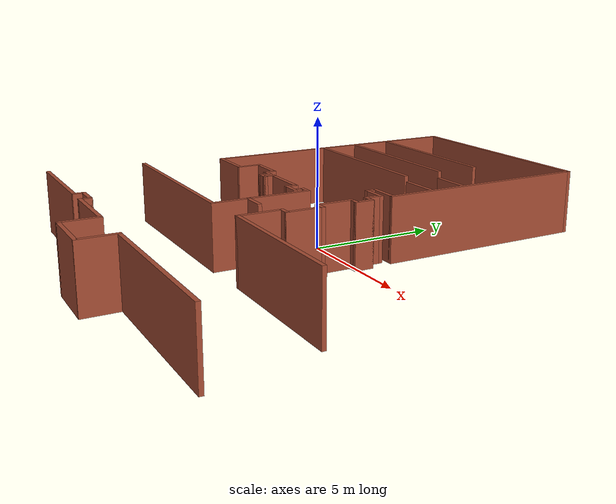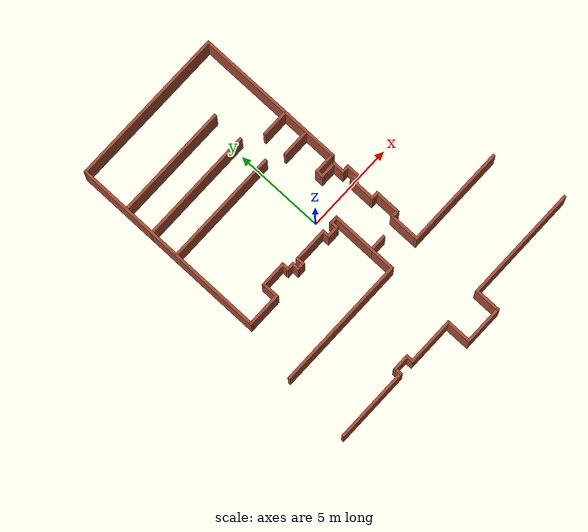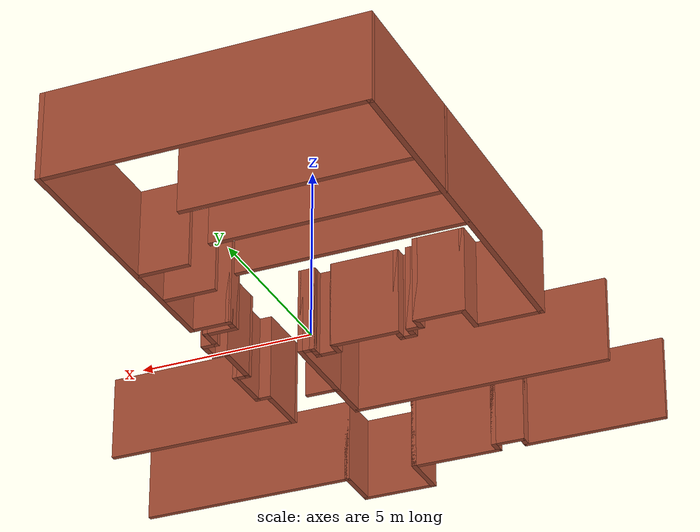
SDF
<?xml version='1.0'?>
<sdf version='1.7'>
  <model name='f1l3.building'>
    <pose>1.00904 0.074098 0 0 -0 0</pose>
    <link name='Wall_10'>
      <collision name='Wall_10_Collision'>
        <geometry>
          <box>
            <size>0.5 0.15 2.5</size>
          </box>
        </geometry>
        <pose>0 0 1.25 0 -0 0</pose>
      </collision>
      <visual name='Wall_10_Visual'>
        <pose>0 0 1.25 0 -0 0</pose>
        <geometry>
          <box>
            <size>0.5 0.15 2.5</size>
          </box>
        </geometry>
        <material>
          <script>
            <uri>file://media/materials/scripts/gazebo.material</uri>
            <name>Gazebo/Bricks</name>
          </script>
          <ambient>1 1 1 1</ambient>
        </material>
        <meta>
          <layer>0</layer>
        </meta>
      </visual>
      <pose>1.72436 -0.153641 0 0 -0 0</pose>
    </link>
    <link name='Wall_101'>
      <collision name='Wall_101_Collision'>
        <geometry>
          <box>
            <size>6.5 0.15 2.5</size>
          </box>
        </geometry>
        <pose>0 0 1.25 0 -0 0</pose>
      </collision>
      <visual name='Wall_101_Visual'>
        <pose>0 0 1.25 0 -0 0</pose>
        <geometry>
          <box>
            <size>6.5 0.15 2.5</size>
          </box>
        </geometry>
        <material>
          <script>
            <uri>file://media/materials/scripts/gazebo.material</uri>
            <name>Gazebo/Bricks</name>
          </script>
          <ambient>1 1 1 1</ambient>
        </material>
        <meta>
          <layer>0</layer>
        </meta>
      </visual>
      <pose>-3.87648 5.27222 0 0 -0 0</pose>
    </link>
    <link name='Wall_103'>
      <collision name='Wall_103_Collision'>
        <geometry>
          <box>
            <size>6.5 0.15 2.5</size>
          </box>
        </geometry>
        <pose>0 0 1.25 0 -0 0</pose>
      </collision>
      <visual name='Wall_103_Visual'>
        <pose>0 0 1.25 0 -0 0</pose>
        <geometry>
          <box>
            <size>6.5 0.15 2.5</size>
          </box>
        </geometry>
        <material>
          <script>
            <uri>file://media/materials/scripts/gazebo.material</uri>
            <name>Gazebo/Bricks</name>
          </script>
          <ambient>1 1 1 1</ambient>
        </material>
        <meta>
          <layer>0</layer>
        </meta>
      </visual>
      <pose>-3.82297 3.63505 0 0 -0 0</pose>
    </link>
    <link name='Wall_105'>
      <collision name='Wall_105_Collision'>
        <geometry>
          <box>
            <size>1.5 0.15 2.5</size>
          </box>
        </geometry>
        <pose>0 0 1.25 0 -0 0</pose>
      </collision>
      <visual name='Wall_105_Visual'>
        <pose>0 0 1.25 0 -0 0</pose>
        <geometry>
          <box>
            <size>1.5 0.15 2.5</size>
          </box>
        </geometry>
        <material>
          <script>
            <uri>file://media/materials/scripts/gazebo.material</uri>
            <name>Gazebo/Bricks</name>
          </script>
          <ambient>1 1 1 1</ambient>
        </material>
        <meta>
          <layer>0</layer>
        </meta>
      </visual>
      <pose>1.02827 4.55529 0 0 -0 0</pose>
    </link>
    <link name='Wall_107'>
      <collision name='Wall_107_Collision'>
        <geometry>
          <box>
            <size>1.5 0.15 2.5</size>
          </box>
        </geometry>
        <pose>0 0 1.25 0 -0 0</pose>
      </collision>
      <visual name='Wall_107_Visual'>
        <pose>0 0 1.25 0 -0 0</pose>
        <geometry>
          <box>
            <size>1.5 0.15 2.5</size>
          </box>
        </geometry>
        <material>
          <script>
            <uri>file://media/materials/scripts/gazebo.material</uri>
            <name>Gazebo/Bricks</name>
          </script>
          <ambient>1 1 1 1</ambient>
        </material>
        <meta>
          <layer>0</layer>
        </meta>
      </visual>
      <pose>0.974768 3.13212 0 0 -0 0</pose>
    </link>
    <link name='Wall_11'>
      <collision name='Wall_11_Collision'>
        <geometry>
          <box>
            <size>0.75 0.15 2.5</size>
          </box>
        </geometry>
        <pose>0 0 1.25 0 -0 0</pose>
      </collision>
      <visual name='Wall_11_Visual'>
        <pose>0 0 1.25 0 -0 0</pose>
        <geometry>
          <box>
            <size>0.75 0.15 2.5</size>
          </box>
        </geometry>
        <material>
          <script>
            <uri>file://media/materials/scripts/gazebo.material</uri>
            <name>Gazebo/Bricks</name>
          </script>
          <ambient>1 1 1 1</ambient>
        </material>
        <meta>
          <layer>0</layer>
        </meta>
      </visual>
      <pose>1.89936 0.146359 0 0 -0 1.5708</pose>
    </link>
    <link name='Wall_12'>
      <collision name='Wall_12_Collision'>
        <geometry>
          <box>
            <size>0.5 0.15 2.5</size>
          </box>
        </geometry>
        <pose>0 0 1.25 0 -0 0</pose>
      </collision>
      <visual name='Wall_12_Visual'>
        <pose>0 0 1.25 0 -0 0</pose>
        <geometry>
          <box>
            <size>0.5 0.15 2.5</size>
          </box>
        </geometry>
        <material>
          <script>
            <uri>file://media/materials/scripts/gazebo.material</uri>
            <name>Gazebo/Bricks</name>
          </script>
          <ambient>1 1 1 1</ambient>
        </material>
        <meta>
          <layer>0</layer>
        </meta>
      </visual>
      <pose>1.72436 0.446359 0 0 -0 3.14159</pose>
    </link>
    <link name='Wall_13'>
      <collision name='Wall_13_Collision'>
        <geometry>
          <box>
            <size>0.75 0.15 2.5</size>
          </box>
        </geometry>
        <pose>0 0 1.25 0 -0 0</pose>
      </collision>
      <visual name='Wall_13_Visual'>
        <pose>0 0 1.25 0 -0 0</pose>
        <geometry>
          <box>
            <size>0.75 0.15 2.5</size>
          </box>
        </geometry>
        <material>
          <script>
            <uri>file://media/materials/scripts/gazebo.material</uri>
            <name>Gazebo/Bricks</name>
          </script>
          <ambient>1 1 1 1</ambient>
        </material>
        <meta>
          <layer>0</layer>
        </meta>
      </visual>
      <pose>1.54936 0.746359 0 0 -0 1.5708</pose>
    </link>
    <link name='Wall_14'>
      <collision name='Wall_14_Collision'>
        <geometry>
          <box>
            <size>1 0.15 2.5</size>
          </box>
        </geometry>
        <pose>0 0 1.25 0 -0 0</pose>
      </collision>
      <visual name='Wall_14_Visual'>
        <pose>0 0 1.25 0 -0 0</pose>
        <geometry>
          <box>
            <size>1 0.15 2.5</size>
          </box>
        </geometry>
        <material>
          <script>
            <uri>file://media/materials/scripts/gazebo.material</uri>
            <name>Gazebo/Bricks</name>
          </script>
          <ambient>1 1 1 1</ambient>
        </material>
        <meta>
          <layer>0</layer>
        </meta>
      </visual>
      <pose>1.12436 1.04636 0 0 -0 3.14159</pose>
    </link>
    <link name='Wall_15'>
      <collision name='Wall_15_Collision'>
        <geometry>
          <box>
            <size>0.5 0.15 2.5</size>
          </box>
        </geometry>
        <pose>0 0 1.25 0 -0 0</pose>
      </collision>
      <visual name='Wall_15_Visual'>
        <pose>0 0 1.25 0 -0 0</pose>
        <geometry>
          <box>
            <size>0.5 0.15 2.5</size>
          </box>
        </geometry>
        <material>
          <script>
            <uri>file://media/materials/scripts/gazebo.material</uri>
            <name>Gazebo/Bricks</name>
          </script>
          <ambient>1 1 1 1</ambient>
        </material>
        <meta>
          <layer>0</layer>
        </meta>
      </visual>
      <pose>0.699359 1.22136 0 0 -0 1.5708</pose>
    </link>
    <link name='Wall_16'>
      <collision name='Wall_16_Collision'>
        <geometry>
          <box>
            <size>1.25 0.15 2.5</size>
          </box>
        </geometry>
        <pose>0 0 1.25 0 -0 0</pose>
      </collision>
      <visual name='Wall_16_Visual'>
        <pose>0 0 1.25 0 -0 0</pose>
        <geometry>
          <box>
            <size>1.25 0.15 2.5</size>
          </box>
        </geometry>
        <material>
          <script>
            <uri>file://media/materials/scripts/gazebo.material</uri>
            <name>Gazebo/Bricks</name>
          </script>
          <ambient>1 1 1 1</ambient>
        </material>
        <meta>
          <layer>0</layer>
        </meta>
      </visual>
      <pose>1.24936 1.39636 0 0 -0 0</pose>
    </link>
    <link name='Wall_19'>
      <collision name='Wall_19_Collision'>
        <geometry>
          <box>
            <size>8.5 0.15 2.5</size>
          </box>
        </geometry>
        <pose>0 0 1.25 0 -0 0</pose>
      </collision>
      <visual name='Wall_19_Visual'>
        <pose>0 0 1.25 0 -0 0</pose>
        <geometry>
          <box>
            <size>8.5 0.15 2.5</size>
          </box>
        </geometry>
        <material>
          <script>
            <uri>file://media/materials/scripts/gazebo.material</uri>
            <name>Gazebo/Bricks</name>
          </script>
          <ambient>1 1 1 1</ambient>
        </material>
        <meta>
          <layer>0</layer>
        </meta>
      </visual>
      <pose>1.79936 5.57136 0 0 -0 1.5708</pose>
    </link>
    <link name='Wall_20'>
      <collision name='Wall_20_Collision'>
        <geometry>
          <box>
            <size>9 0.15 2.5</size>
          </box>
        </geometry>
        <pose>0 0 1.25 0 -0 0</pose>
      </collision>
      <visual name='Wall_20_Visual'>
        <pose>0 0 1.25 0 -0 0</pose>
        <geometry>
          <box>
            <size>9 0.15 2.5</size>
          </box>
        </geometry>
        <material>
          <script>
            <uri>file://media/materials/scripts/gazebo.material</uri>
            <name>Gazebo/Bricks</name>
          </script>
          <ambient>1 1 1 1</ambient>
        </material>
        <meta>
          <layer>0</layer>
        </meta>
      </visual>
      <pose>-2.62564 9.74636 0 0 -0 3.14159</pose>
    </link>
    <link name='Wall_21'>
      <collision name='Wall_21_Collision'>
        <geometry>
          <box>
            <size>11.25 0.15 2.5</size>
          </box>
        </geometry>
        <pose>0 0 1.25 0 -0 0</pose>
      </collision>
      <visual name='Wall_21_Visual'>
        <pose>0 0 1.25 0 -0 0</pose>
        <geometry>
          <box>
            <size>11.25 0.15 2.5</size>
          </box>
        </geometry>
        <material>
          <script>
            <uri>file://media/materials/scripts/gazebo.material</uri>
            <name>Gazebo/Bricks</name>
          </script>
          <ambient>1 1 1 1</ambient>
        </material>
        <meta>
          <layer>0</layer>
        </meta>
      </visual>
      <pose>-7.05064 4.19636 0 0 -0 -1.5708</pose>
    </link>
    <link name='Wall_5'>
      <collision name='Wall_5_Collision'>
        <geometry>
          <box>
            <size>1.75 0.15 2.5</size>
          </box>
        </geometry>
        <pose>0 0 1.25 0 -0 0</pose>
      </collision>
      <visual name='Wall_5_Visual'>
        <pose>0 0 1.25 0 -0 0</pose>
        <geometry>
          <box>
            <size>1.75 0.15 2.5</size>
          </box>
        </geometry>
        <material>
          <script>
            <uri>file://media/materials/scripts/gazebo.material</uri>
            <name>Gazebo/Bricks</name>
          </script>
          <ambient>1 1 1 1</ambient>
        </material>
        <meta>
          <layer>0</layer>
        </meta>
      </visual>
      <pose>1.54936 -3.65364 0 0 -0 1.5708</pose>
    </link>
    <link name='Wall_6'>
      <collision name='Wall_6_Collision'>
        <geometry>
          <box>
            <size>0.5 0.15 2.5</size>
          </box>
        </geometry>
        <pose>0 0 1.25 0 -0 0</pose>
      </collision>
      <visual name='Wall_6_Visual'>
        <pose>0 0 1.25 0 -0 0</pose>
        <geometry>
          <box>
            <size>0.5 0.15 2.5</size>
          </box>
        </geometry>
        <material>
          <script>
            <uri>file://media/materials/scripts/gazebo.material</uri>
            <name>Gazebo/Bricks</name>
          </script>
          <ambient>1 1 1 1</ambient>
        </material>
        <meta>
          <layer>0</layer>
        </meta>
      </visual>
      <pose>1.72436 -2.85364 0 0 -0 0</pose>
    </link>
    <link name='Wall_61'>
      <collision name='Wall_61_Collision'>
        <geometry>
          <box>
            <size>2 0.15 2.5</size>
          </box>
        </geometry>
        <pose>0 0 1.25 0 -0 0</pose>
      </collision>
      <visual name='Wall_61_Visual'>
        <pose>0 0 1.25 0 -0 0</pose>
        <geometry>
          <box>
            <size>2 0.15 2.5</size>
          </box>
        </geometry>
        <material>
          <script>
            <uri>file://media/materials/scripts/gazebo.material</uri>
            <name>Gazebo/Bricks</name>
          </script>
          <ambient>1 1 1 1</ambient>
        </material>
        <meta>
          <layer>0</layer>
        </meta>
      </visual>
      <pose>-6.12564 -1.35364 0 0 -0 0</pose>
    </link>
    <link name='Wall_62'>
      <collision name='Wall_62_Collision'>
        <geometry>
          <box>
            <size>1 0.15 2.5</size>
          </box>
        </geometry>
        <pose>0 0 1.25 0 -0 0</pose>
      </collision>
      <visual name='Wall_62_Visual'>
        <pose>0 0 1.25 0 -0 0</pose>
        <geometry>
          <box>
            <size>1 0.15 2.5</size>
          </box>
        </geometry>
        <material>
          <script>
            <uri>file://media/materials/scripts/gazebo.material</uri>
            <name>Gazebo/Bricks</name>
          </script>
          <ambient>1 1 1 1</ambient>
        </material>
        <meta>
          <layer>0</layer>
        </meta>
      </visual>
      <pose>-5.20064 -0.928641 0 0 -0 1.5708</pose>
    </link>
    <link name='Wall_63'>
      <collision name='Wall_63_Collision'>
        <geometry>
          <box>
            <size>1.5 0.15 2.5</size>
          </box>
        </geometry>
        <pose>0 0 1.25 0 -0 0</pose>
      </collision>
      <visual name='Wall_63_Visual'>
        <pose>0 0 1.25 0 -0 0</pose>
        <geometry>
          <box>
            <size>1.5 0.15 2.5</size>
          </box>
        </geometry>
        <material>
          <script>
            <uri>file://media/materials/scripts/gazebo.material</uri>
            <name>Gazebo/Bricks</name>
          </script>
          <ambient>1 1 1 1</ambient>
        </material>
        <meta>
          <layer>0</layer>
        </meta>
      </visual>
      <pose>-4.52564 -0.503641 0 0 -0 0</pose>
    </link>
    <link name='Wall_64'>
      <collision name='Wall_64_Collision'>
        <geometry>
          <box>
            <size>0.5 0.15 2.5</size>
          </box>
        </geometry>
        <pose>0 0 1.25 0 -0 0</pose>
      </collision>
      <visual name='Wall_64_Visual'>
        <pose>0 0 1.25 0 -0 0</pose>
        <geometry>
          <box>
            <size>0.5 0.15 2.5</size>
          </box>
        </geometry>
        <material>
          <script>
            <uri>file://media/materials/scripts/gazebo.material</uri>
            <name>Gazebo/Bricks</name>
          </script>
          <ambient>1 1 1 1</ambient>
        </material>
        <meta>
          <layer>0</layer>
        </meta>
      </visual>
      <pose>-3.85064 -0.678641 0 0 -0 -1.5708</pose>
    </link>
    <link name='Wall_65'>
      <collision name='Wall_65_Collision'>
        <geometry>
          <box>
            <size>0.5 0.15 2.5</size>
          </box>
        </geometry>
        <pose>0 0 1.25 0 -0 0</pose>
      </collision>
      <visual name='Wall_65_Visual'>
        <pose>0 0 1.25 0 -0 0</pose>
        <geometry>
          <box>
            <size>0.5 0.15 2.5</size>
          </box>
        </geometry>
        <material>
          <script>
            <uri>file://media/materials/scripts/gazebo.material</uri>
            <name>Gazebo/Bricks</name>
          </script>
          <ambient>1 1 1 1</ambient>
        </material>
        <meta>
          <layer>0</layer>
        </meta>
      </visual>
      <pose>-3.67564 -0.853641 0 0 -0 0</pose>
    </link>
    <link name='Wall_66'>
      <collision name='Wall_66_Collision'>
        <geometry>
          <box>
            <size>0.5 0.15 2.5</size>
          </box>
        </geometry>
        <pose>0 0 1.25 0 -0 0</pose>
      </collision>
      <visual name='Wall_66_Visual'>
        <pose>0 0 1.25 0 -0 0</pose>
        <geometry>
          <box>
            <size>0.5 0.15 2.5</size>
          </box>
        </geometry>
        <material>
          <script>
            <uri>file://media/materials/scripts/gazebo.material</uri>
            <name>Gazebo/Bricks</name>
          </script>
          <ambient>1 1 1 1</ambient>
        </material>
        <meta>
          <layer>0</layer>
        </meta>
      </visual>
      <pose>-3.50064 -1.02864 0 0 -0 -1.5708</pose>
    </link>
    <link name='Wall_67'>
      <collision name='Wall_67_Collision'>
        <geometry>
          <box>
            <size>0.5 0.15 2.5</size>
          </box>
        </geometry>
        <pose>0 0 1.25 0 -0 0</pose>
      </collision>
      <visual name='Wall_67_Visual'>
        <pose>0 0 1.25 0 -0 0</pose>
        <geometry>
          <box>
            <size>0.5 0.15 2.5</size>
          </box>
        </geometry>
        <material>
          <script>
            <uri>file://media/materials/scripts/gazebo.material</uri>
            <name>Gazebo/Bricks</name>
          </script>
          <ambient>1 1 1 1</ambient>
        </material>
        <meta>
          <layer>0</layer>
        </meta>
      </visual>
      <pose>-3.32564 -1.20364 0 0 -0 0</pose>
    </link>
    <link name='Wall_68'>
      <collision name='Wall_68_Collision'>
        <geometry>
          <box>
            <size>0.5 0.15 2.5</size>
          </box>
        </geometry>
        <pose>0 0 1.25 0 -0 0</pose>
      </collision>
      <visual name='Wall_68_Visual'>
        <pose>0 0 1.25 0 -0 0</pose>
        <geometry>
          <box>
            <size>0.5 0.15 2.5</size>
          </box>
        </geometry>
        <material>
          <script>
            <uri>file://media/materials/scripts/gazebo.material</uri>
            <name>Gazebo/Bricks</name>
          </script>
          <ambient>1 1 1 1</ambient>
        </material>
        <meta>
          <layer>0</layer>
        </meta>
      </visual>
      <pose>-3.15064 -1.02864 0 0 -0 1.5708</pose>
    </link>
    <link name='Wall_69'>
      <collision name='Wall_69_Collision'>
        <geometry>
          <box>
            <size>2 0.15 2.5</size>
          </box>
        </geometry>
        <pose>0 0 1.25 0 -0 0</pose>
      </collision>
      <visual name='Wall_69_Visual'>
        <pose>0 0 1.25 0 -0 0</pose>
        <geometry>
          <box>
            <size>2 0.15 2.5</size>
          </box>
        </geometry>
        <material>
          <script>
            <uri>file://media/materials/scripts/gazebo.material</uri>
            <name>Gazebo/Bricks</name>
          </script>
          <ambient>1 1 1 1</ambient>
        </material>
        <meta>
          <layer>0</layer>
        </meta>
      </visual>
      <pose>-2.22564 -0.853641 0 0 -0 0</pose>
    </link>
    <link name='Wall_7'>
      <collision name='Wall_7_Collision'>
        <geometry>
          <box>
            <size>1.5 0.15 2.5</size>
          </box>
        </geometry>
        <pose>0 0 1.25 0 -0 0</pose>
      </collision>
      <visual name='Wall_7_Visual'>
        <pose>0 0 1.25 0 -0 0</pose>
        <geometry>
          <box>
            <size>1.5 0.15 2.5</size>
          </box>
        </geometry>
        <material>
          <script>
            <uri>file://media/materials/scripts/gazebo.material</uri>
            <name>Gazebo/Bricks</name>
          </script>
          <ambient>1 1 1 1</ambient>
        </material>
        <meta>
          <layer>0</layer>
        </meta>
      </visual>
      <pose>1.89936 -2.17864 0 0 -0 1.5708</pose>
    </link>
    <link name='Wall_70'>
      <collision name='Wall_70_Collision'>
        <geometry>
          <box>
            <size>0.5 0.15 2.5</size>
          </box>
        </geometry>
        <pose>0 0 1.25 0 -0 0</pose>
      </collision>
      <visual name='Wall_70_Visual'>
        <pose>0 0 1.25 0 -0 0</pose>
        <geometry>
          <box>
            <size>0.5 0.15 2.5</size>
          </box>
        </geometry>
        <material>
          <script>
            <uri>file://media/materials/scripts/gazebo.material</uri>
            <name>Gazebo/Bricks</name>
          </script>
          <ambient>1 1 1 1</ambient>
        </material>
        <meta>
          <layer>0</layer>
        </meta>
      </visual>
      <pose>-1.30064 -1.02864 0 0 -0 -1.5708</pose>
    </link>
    <link name='Wall_71'>
      <collision name='Wall_71_Collision'>
        <geometry>
          <box>
            <size>0.75 0.15 2.5</size>
          </box>
        </geometry>
        <pose>0 0 1.25 0 -0 0</pose>
      </collision>
      <visual name='Wall_71_Visual'>
        <pose>0 0 1.25 0 -0 0</pose>
        <geometry>
          <box>
            <size>0.75 0.15 2.5</size>
          </box>
        </geometry>
        <material>
          <script>
            <uri>file://media/materials/scripts/gazebo.material</uri>
            <name>Gazebo/Bricks</name>
          </script>
          <ambient>1 1 1 1</ambient>
        </material>
        <meta>
          <layer>0</layer>
        </meta>
      </visual>
      <pose>-1.00064 -1.20364 0 0 -0 0</pose>
    </link>
    <link name='Wall_72'>
      <collision name='Wall_72_Collision'>
        <geometry>
          <box>
            <size>0.5 0.15 2.5</size>
          </box>
        </geometry>
        <pose>0 0 1.25 0 -0 0</pose>
      </collision>
      <visual name='Wall_72_Visual'>
        <pose>0 0 1.25 0 -0 0</pose>
        <geometry>
          <box>
            <size>0.5 0.15 2.5</size>
          </box>
        </geometry>
        <material>
          <script>
            <uri>file://media/materials/scripts/gazebo.material</uri>
            <name>Gazebo/Bricks</name>
          </script>
          <ambient>1 1 1 1</ambient>
        </material>
        <meta>
          <layer>0</layer>
        </meta>
      </visual>
      <pose>-0.700641 -1.02864 0 0 -0 1.5708</pose>
    </link>
    <link name='Wall_73'>
      <collision name='Wall_73_Collision'>
        <geometry>
          <box>
            <size>0.5 0.15 2.5</size>
          </box>
        </geometry>
        <pose>0 0 1.25 0 -0 0</pose>
      </collision>
      <visual name='Wall_73_Visual'>
        <pose>0 0 1.25 0 -0 0</pose>
        <geometry>
          <box>
            <size>0.5 0.15 2.5</size>
          </box>
        </geometry>
        <material>
          <script>
            <uri>file://media/materials/scripts/gazebo.material</uri>
            <name>Gazebo/Bricks</name>
          </script>
          <ambient>1 1 1 1</ambient>
        </material>
        <meta>
          <layer>0</layer>
        </meta>
      </visual>
      <pose>-0.525641 -0.853641 0 0 -0 0</pose>
    </link>
    <link name='Wall_75'>
      <collision name='Wall_75_Collision'>
        <geometry>
          <box>
            <size>2.5 0.15 2.5</size>
          </box>
        </geometry>
        <pose>0 0 1.25 0 -0 0</pose>
      </collision>
      <visual name='Wall_75_Visual'>
        <pose>0 0 1.25 0 -0 0</pose>
        <geometry>
          <box>
            <size>2.5 0.15 2.5</size>
          </box>
        </geometry>
        <material>
          <script>
            <uri>file://media/materials/scripts/gazebo.material</uri>
            <name>Gazebo/Bricks</name>
          </script>
          <ambient>1 1 1 1</ambient>
        </material>
        <meta>
          <layer>0</layer>
        </meta>
      </visual>
      <pose>-0.350641 -2.02864 0 0 -0 -1.5708</pose>
    </link>
    <link name='Wall_76'>
      <collision name='Wall_76_Collision'>
        <geometry>
          <box>
            <size>1 0.15 2.5</size>
          </box>
        </geometry>
        <pose>0 0 1.25 0 -0 0</pose>
      </collision>
      <visual name='Wall_76_Visual'>
        <pose>0 0 1.25 0 -0 0</pose>
        <geometry>
          <box>
            <size>1 0.15 2.5</size>
          </box>
        </geometry>
        <material>
          <script>
            <uri>file://media/materials/scripts/gazebo.material</uri>
            <name>Gazebo/Bricks</name>
          </script>
          <ambient>1 1 1 1</ambient>
        </material>
        <meta>
          <layer>0</layer>
        </meta>
      </visual>
      <pose>0.074359 -3.20364 0 0 -0 0</pose>
    </link>
    <link name='Wall_8'>
      <collision name='Wall_8_Collision'>
        <geometry>
          <box>
            <size>0.5 0.15 2.5</size>
          </box>
        </geometry>
        <pose>0 0 1.25 0 -0 0</pose>
      </collision>
      <visual name='Wall_8_Visual'>
        <pose>0 0 1.25 0 -0 0</pose>
        <geometry>
          <box>
            <size>0.5 0.15 2.5</size>
          </box>
        </geometry>
        <material>
          <script>
            <uri>file://media/materials/scripts/gazebo.material</uri>
            <name>Gazebo/Bricks</name>
          </script>
          <ambient>1 1 1 1</ambient>
        </material>
        <meta>
          <layer>0</layer>
        </meta>
      </visual>
      <pose>1.72436 -1.50364 0 0 -0 3.14159</pose>
    </link>
    <link name='Wall_81'>
      <collision name='Wall_81_Collision'>
        <geometry>
          <box>
            <size>1.5 0.15 2.5</size>
          </box>
        </geometry>
        <pose>0 0 1.25 0 -0 0</pose>
      </collision>
      <visual name='Wall_81_Visual'>
        <pose>0 0 1.25 0 -0 0</pose>
        <geometry>
          <box>
            <size>1.5 0.15 2.5</size>
          </box>
        </geometry>
        <material>
          <script>
            <uri>file://media/materials/scripts/gazebo.material</uri>
            <name>Gazebo/Bricks</name>
          </script>
          <ambient>1 1 1 1</ambient>
        </material>
        <meta>
          <layer>0</layer>
        </meta>
      </visual>
      <pose>-0.350641 -3.87864 0 0 -0 1.5708</pose>
    </link>
    <link name='Wall_83'>
      <collision name='Wall_83_Collision'>
        <geometry>
          <box>
            <size>7.5 0.15 2.5</size>
          </box>
        </geometry>
        <pose>0 0 1.25 0 -0 0</pose>
      </collision>
      <visual name='Wall_83_Visual'>
        <pose>0 0 1.25 0 -0 0</pose>
        <geometry>
          <box>
            <size>7.5 0.15 2.5</size>
          </box>
        </geometry>
        <material>
          <script>
            <uri>file://media/materials/scripts/gazebo.material</uri>
            <name>Gazebo/Bricks</name>
          </script>
          <ambient>1 1 1 1</ambient>
        </material>
        <meta>
          <layer>0</layer>
        </meta>
      </visual>
      <pose>-4.02564 -4.55364 0 0 -0 3.14159</pose>
    </link>
    <link name='Wall_85'>
      <collision name='Wall_85_Collision'>
        <geometry>
          <box>
            <size>5.75 0.15 2.5</size>
          </box>
        </geometry>
        <pose>0 0 1.25 0 -0 0</pose>
      </collision>
      <visual name='Wall_85_Visual'>
        <pose>0 0 1.25 0 -0 0</pose>
        <geometry>
          <box>
            <size>5.75 0.15 2.5</size>
          </box>
        </geometry>
        <material>
          <script>
            <uri>file://media/materials/scripts/gazebo.material</uri>
            <name>Gazebo/Bricks</name>
          </script>
          <ambient>1 1 1 1</ambient>
        </material>
        <meta>
          <layer>0</layer>
        </meta>
      </visual>
      <pose>4.34936 -4.45364 0 0 -0 0</pose>
    </link>
    <link name='Wall_89'>
      <collision name='Wall_89_Collision'>
        <geometry>
          <box>
            <size>4.25 0.15 2.5</size>
          </box>
        </geometry>
        <pose>0 0 1.25 0 -0 0</pose>
      </collision>
      <visual name='Wall_89_Visual'>
        <pose>0 0 1.25 0 -0 0</pose>
        <geometry>
          <box>
            <size>4.25 0.15 2.5</size>
          </box>
        </geometry>
        <material>
          <script>
            <uri>file://media/materials/scripts/gazebo.material</uri>
            <name>Gazebo/Bricks</name>
          </script>
          <ambient>1 1 1 1</ambient>
        </material>
        <meta>
          <layer>0</layer>
        </meta>
      </visual>
      <pose>-5.95 -8.39636 0 0 -0 0</pose>
    </link>
    <link name='Wall_9'>
      <collision name='Wall_9_Collision'>
        <geometry>
          <box>
            <size>1.5 0.15 2.5</size>
          </box>
        </geometry>
        <pose>0 0 1.25 0 -0 0</pose>
      </collision>
      <visual name='Wall_9_Visual'>
        <pose>0 0 1.25 0 -0 0</pose>
        <geometry>
          <box>
            <size>1.5 0.15 2.5</size>
          </box>
        </geometry>
        <material>
          <script>
            <uri>file://media/materials/scripts/gazebo.material</uri>
            <name>Gazebo/Bricks</name>
          </script>
          <ambient>1 1 1 1</ambient>
        </material>
        <meta>
          <layer>0</layer>
        </meta>
      </visual>
      <pose>1.54936 -0.828641 0 0 -0 1.5708</pose>
    </link>
    <link name='Wall_90'>
      <collision name='Wall_90_Collision'>
        <geometry>
          <box>
            <size>0.5 0.15 2.5</size>
          </box>
        </geometry>
        <pose>0 0 1.25 0 -0 0</pose>
      </collision>
      <visual name='Wall_90_Visual'>
        <pose>0 0 1.25 0 -0 0</pose>
        <geometry>
          <box>
            <size>0.5 0.15 2.5</size>
          </box>
        </geometry>
        <material>
          <script>
            <uri>file://media/materials/scripts/gazebo.material</uri>
            <name>Gazebo/Bricks</name>
          </script>
          <ambient>1 1 1 1</ambient>
        </material>
        <meta>
          <layer>0</layer>
        </meta>
      </visual>
      <pose>-3.9 -8.22136 0 0 -0 1.5708</pose>
    </link>
    <link name='Wall_91'>
      <collision name='Wall_91_Collision'>
        <geometry>
          <box>
            <size>1 0.15 2.5</size>
          </box>
        </geometry>
        <pose>0 0 1.25 0 -0 0</pose>
      </collision>
      <visual name='Wall_91_Visual'>
        <pose>0 0 1.25 0 -0 0</pose>
        <geometry>
          <box>
            <size>1 0.15 2.5</size>
          </box>
        </geometry>
        <material>
          <script>
            <uri>file://media/materials/scripts/gazebo.material</uri>
            <name>Gazebo/Bricks</name>
          </script>
          <ambient>1 1 1 1</ambient>
        </material>
        <meta>
          <layer>0</layer>
        </meta>
      </visual>
      <pose>-3.475 -8.04636 0 0 -0 0</pose>
    </link>
    <link name='Wall_92'>
      <collision name='Wall_92_Collision'>
        <geometry>
          <box>
            <size>0.5 0.15 2.5</size>
          </box>
        </geometry>
        <pose>0 0 1.25 0 -0 0</pose>
      </collision>
      <visual name='Wall_92_Visual'>
        <pose>0 0 1.25 0 -0 0</pose>
        <geometry>
          <box>
            <size>0.5 0.15 2.5</size>
          </box>
        </geometry>
        <material>
          <script>
            <uri>file://media/materials/scripts/gazebo.material</uri>
            <name>Gazebo/Bricks</name>
          </script>
          <ambient>1 1 1 1</ambient>
        </material>
        <meta>
          <layer>0</layer>
        </meta>
      </visual>
      <pose>-3.05 -8.22136 0 0 -0 -1.5708</pose>
    </link>
    <link name='Wall_93'>
      <collision name='Wall_93_Collision'>
        <geometry>
          <box>
            <size>2.75 0.15 2.5</size>
          </box>
        </geometry>
        <pose>0 0 1.25 0 -0 0</pose>
      </collision>
      <visual name='Wall_93_Visual'>
        <pose>0 0 1.25 0 -0 0</pose>
        <geometry>
          <box>
            <size>2.75 0.15 2.5</size>
          </box>
        </geometry>
        <material>
          <script>
            <uri>file://media/materials/scripts/gazebo.material</uri>
            <name>Gazebo/Bricks</name>
          </script>
          <ambient>1 1 1 1</ambient>
        </material>
        <meta>
          <layer>0</layer>
        </meta>
      </visual>
      <pose>-1.75 -8.39636 0 0 -0 0</pose>
    </link>
    <link name='Wall_94'>
      <collision name='Wall_94_Collision'>
        <geometry>
          <box>
            <size>1.5 0.15 2.5</size>
          </box>
        </geometry>
        <pose>0 0 1.25 0 -0 0</pose>
      </collision>
      <visual name='Wall_94_Visual'>
        <pose>0 0 1.25 0 -0 0</pose>
        <geometry>
          <box>
            <size>1.5 0.15 2.5</size>
          </box>
        </geometry>
        <material>
          <script>
            <uri>file://media/materials/scripts/gazebo.material</uri>
            <name>Gazebo/Bricks</name>
          </script>
          <ambient>1 1 1 1</ambient>
        </material>
        <meta>
          <layer>0</layer>
        </meta>
      </visual>
      <pose>-0.45 -9.07136 0 0 -0 -1.5708</pose>
    </link>
    <link name='Wall_95'>
      <collision name='Wall_95_Collision'>
        <geometry>
          <box>
            <size>2.25 0.15 2.5</size>
          </box>
        </geometry>
        <pose>0 0 1.25 0 -0 0</pose>
      </collision>
      <visual name='Wall_95_Visual'>
        <pose>0 0 1.25 0 -0 0</pose>
        <geometry>
          <box>
            <size>2.25 0.15 2.5</size>
          </box>
        </geometry>
        <material>
          <script>
            <uri>file://media/materials/scripts/gazebo.material</uri>
            <name>Gazebo/Bricks</name>
          </script>
          <ambient>1 1 1 1</ambient>
        </material>
        <meta>
          <layer>0</layer>
        </meta>
      </visual>
      <pose>0.6 -9.74636 0 0 -0 0</pose>
    </link>
    <link name='Wall_96'>
      <collision name='Wall_96_Collision'>
        <geometry>
          <box>
            <size>1.5 0.15 2.5</size>
          </box>
        </geometry>
        <pose>0 0 1.25 0 -0 0</pose>
      </collision>
      <visual name='Wall_96_Visual'>
        <pose>0 0 1.25 0 -0 0</pose>
        <geometry>
          <box>
            <size>1.5 0.15 2.5</size>
          </box>
        </geometry>
        <material>
          <script>
            <uri>file://media/materials/scripts/gazebo.material</uri>
            <name>Gazebo/Bricks</name>
          </script>
          <ambient>1 1 1 1</ambient>
        </material>
        <meta>
          <layer>0</layer>
        </meta>
      </visual>
      <pose>1.65 -9.07136 0 0 -0 1.5708</pose>
    </link>
    <link name='Wall_97'>
      <collision name='Wall_97_Collision'>
        <geometry>
          <box>
            <size>6.5 0.15 2.5</size>
          </box>
        </geometry>
        <pose>0 0 1.25 0 -0 0</pose>
      </collision>
      <visual name='Wall_97_Visual'>
        <pose>0 0 1.25 0 -0 0</pose>
        <geometry>
          <box>
            <size>6.5 0.15 2.5</size>
          </box>
        </geometry>
        <material>
          <script>
            <uri>file://media/materials/scripts/gazebo.material</uri>
            <name>Gazebo/Bricks</name>
          </script>
          <ambient>1 1 1 1</ambient>
        </material>
        <meta>
          <layer>0</layer>
        </meta>
      </visual>
      <pose>4.825 -8.39636 0 0 -0 0</pose>
    </link>
    <link name='Wall_99'>
      <collision name='Wall_99_Collision'>
        <geometry>
          <box>
            <size>6.5 0.15 2.5</size>
          </box>
        </geometry>
        <pose>0 0 1.25 0 -0 0</pose>
      </collision>
      <visual name='Wall_99_Visual'>
        <pose>0 0 1.25 0 -0 0</pose>
        <geometry>
          <box>
            <size>6.5 0.15 2.5</size>
          </box>
        </geometry>
        <material>
          <script>
            <uri>file://media/materials/scripts/gazebo.material</uri>
            <name>Gazebo/Bricks</name>
          </script>
          <ambient>1 1 1 1</ambient>
        </material>
        <meta>
          <layer>0</layer>
        </meta>
      </visual>
      <pose>-3.86578 6.995 0 0 -0 0</pose>
    </link>
    <static>1</static>
  </model>
</sdf>
